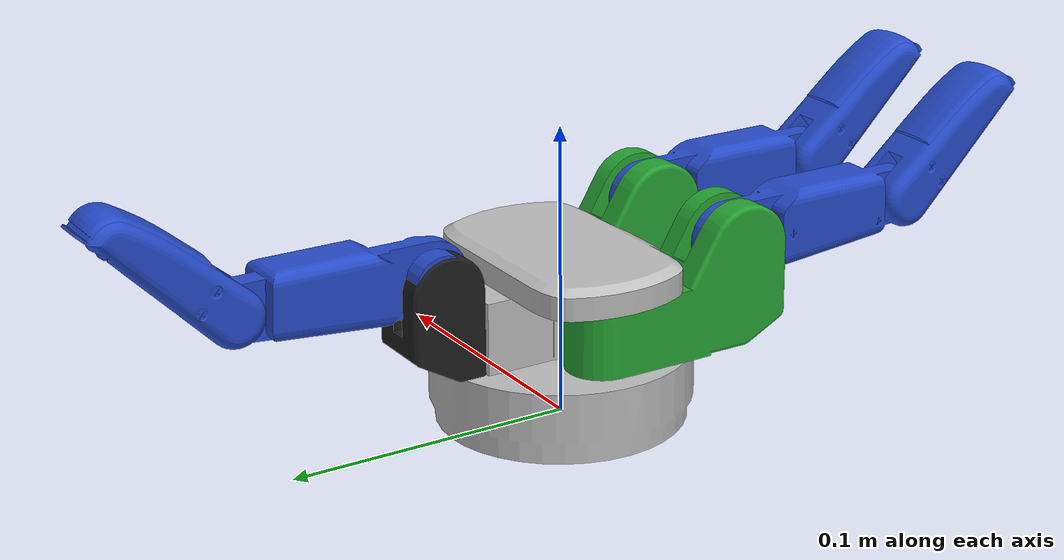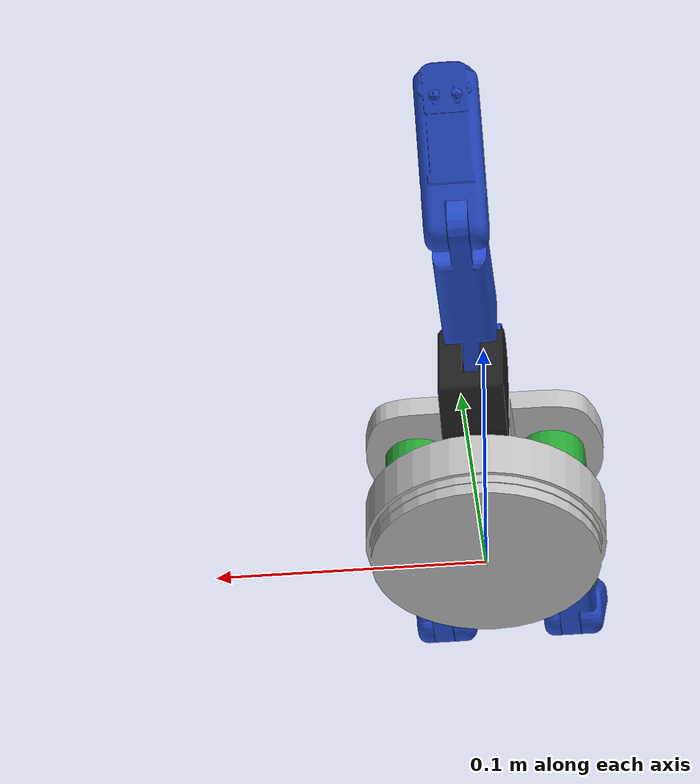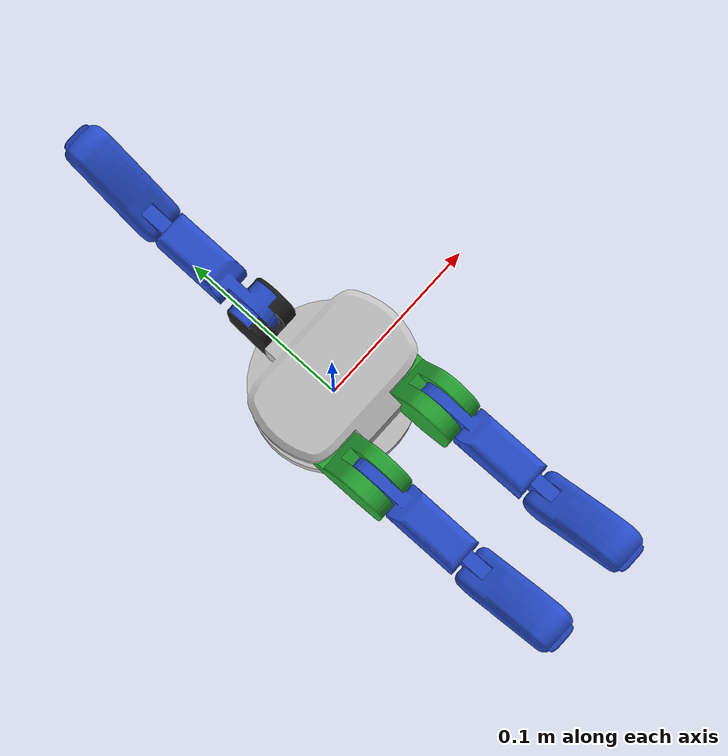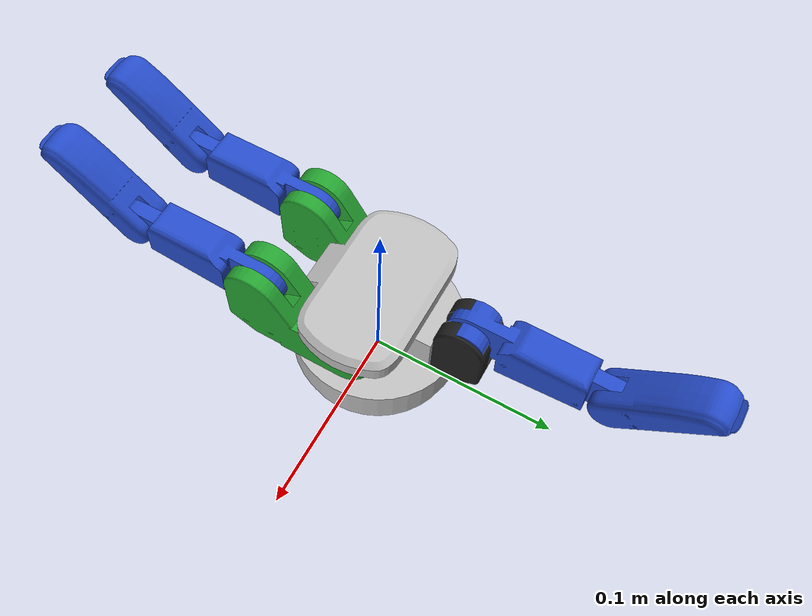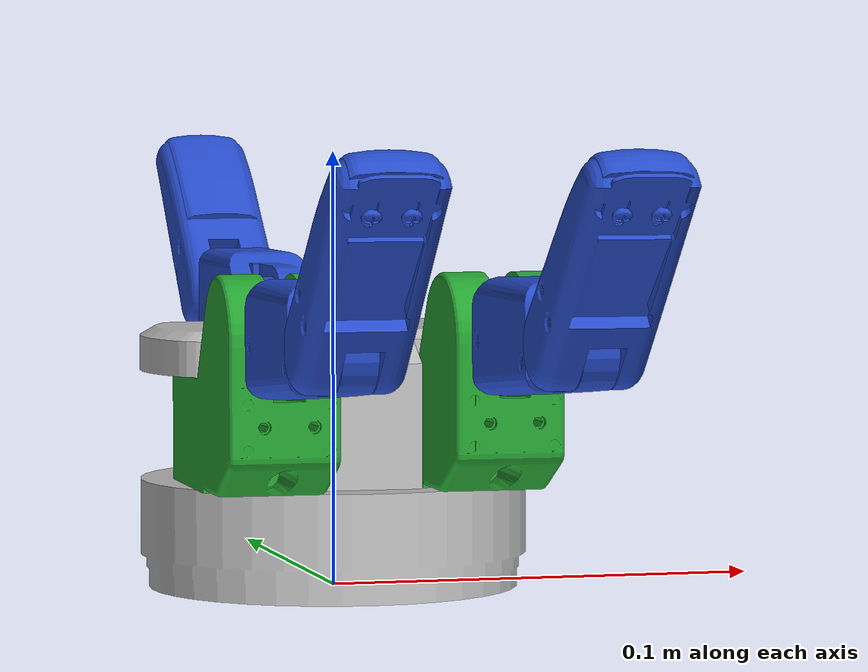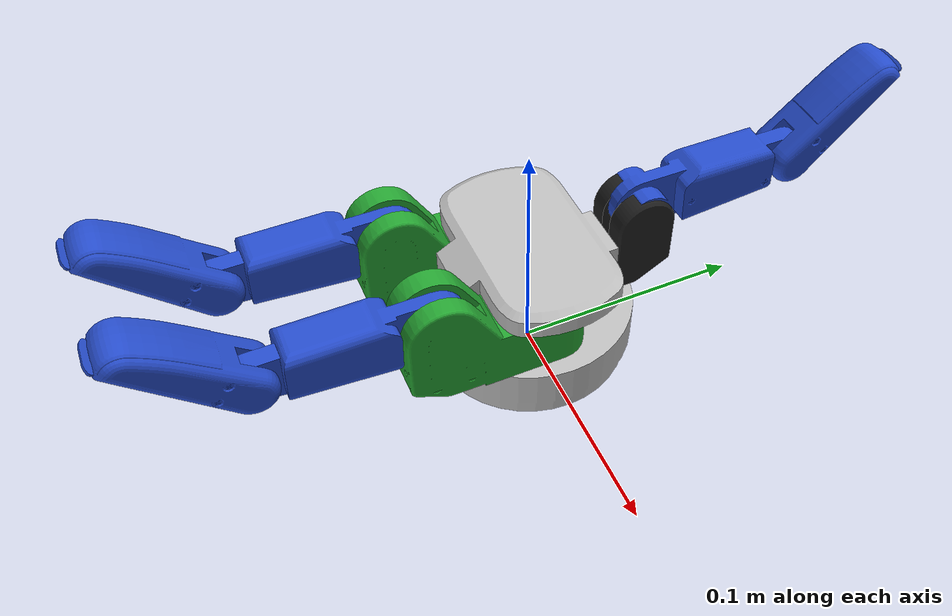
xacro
<?xml version="1.0"?>
<robot name="bhand" xmlns:xacro="http://www.ros.org/wiki/xacro">

	<!-- Available choices: bh282.urdf.xacro, bh280.urdf.xacro -->
	<xacro:include filename="$(find bhand_description)/urdf/bh282.urdf.xacro" />

	<!-- z-coordinate is not 0 because otherwise the hand base tilts when the simulation is started -->
	<link name="base_link">
		<visual>
		  <origin xyz="0 0 0.01" rpy="0 0 0" />
		  <geometry>
			 <box size="0.001 0.001 0.001" />
		  </geometry>
		</visual>

		<collision>
		  <origin xyz="0 0 0.01" rpy="0 0 0" />
		  <geometry>
			<box size="0.001 0.001 0.001" />
		  </geometry>
		</collision>
	</link>

	<joint name="hand_joint" type="fixed">
		 <origin xyz="0 0 0" rpy="0 0 0" />
		 <parent link="base_link"/>
		 <child link="hand_base_link"/>
	</joint>

	<link name="hand_base_link"/>

	<xacro:bhand_macro name="bh" parent="hand_base_link">
		<origin xyz="0 0 0" rpy="0 0 0" />
	</xacro:bhand_macro>

	<gazebo>
	    <plugin name="ros_control" filename="libgazebo_ros_control.so">
	       <robotNamespace>/</robotNamespace>
	       <controlPeriod>0.001</controlPeriod>
	       <robotSimType>gazebo_ros_control/DefaultRobotHWSim</robotSimType>
	    </plugin>
    </gazebo>

</robot>

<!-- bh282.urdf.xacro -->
<robot xmlns:xacro="http://www.ros.org/wiki/xacro">

	<!-- Import all Gazebo-customization elements, including Gazebo colors -->
	<xacro:include filename="$(find bhand_description)/urdf/bh282.gazebo.xacro" />

	<!-- Constants for robot dimensions -->
	<xacro:property name="PI" value="3.1415926535897931"/>
	<xacro:property name="PI_2" value="1.570796327"/>
	<xacro:property name="joint_damping" value="100.0" />
	<xacro:property name="joint_friction" value="1.0" />
	<xacro:property name="joint_effort_limit" value="30.0" />
	<xacro:property name="joint_velocity_limit" value="2.0" />
	<xacro:property name="mechanical_reduction" value="1.0" />

	<xacro:macro name="bhand_macro" params="parent name *origin">

		<joint name="${name}_base_joint" type="fixed">
			<insert_block name="origin"/>
			<parent link="${parent}"/>
			<child link="${name}_base_link"/>
		</joint>

		<!-- HAND BASE_LINK (RED) -->
		<link name="${name}_base_link">
			<inertial>
			  <mass value="3.0" />
			  <origin xyz="0 0 0" />
			  <inertia  ixx="1.0" ixy="0.0"  ixz="0.0"  iyy="1.0"  iyz="0.0"  izz="1.0" />
			</inertial>
			<visual>
			   <origin xyz="0 0 0" rpy="0 0 0" />
			   <geometry>
				  <mesh filename="package://bhand_description/meshes/palm_282.dae"/>
			   </geometry>
			   <material name="Grey">
				  <color rgba="0.75 0.75 0.75 1.0"/>
			   </material>
			</visual>
			<collision>
			   <origin xyz="0 0 0" rpy="0 0 0 " />
			   <geometry>
				  <mesh filename="package://bhand_description/meshes/palm_282.dae"/>
			   </geometry>
			   <contact_coefficients kd="1.0" kp="1000.0" mu="0"/>
			</collision>
		</link>

		<!-- finger 3 -->
		<!-- finger 31 link -->
		<link name="${name}_finger_31_link">
		 <inertial>
		   <mass value="0.1"/>
		   <origin xyz="-0.046 0 0" rpy="0 0 0"/>
		   <inertia ixx="0.01" ixy="0" ixz="0" iyy="0.01" iyz="0" izz="0.01" />
		 </inertial>
		 <visual>
		   <origin xyz="-0.04 0 0" rpy="0 0 0" />
		   <geometry>
			  <mesh filename="package://bhand_description/meshes/knuckle_fixed.dae" />
		   </geometry>
		   <material name="Black"/>
		 </visual>
		 <collision>
		   <origin xyz="-0.04 0 0" rpy="0 0 0" />
		   <geometry>
			  <mesh filename="package://bhand_description/meshes/knuckle_fixed.dae"/>
		   </geometry>
		   <contact_coefficients kd="1.0" kp="1000.0" mu="0"/>
		  </collision>
		</link>

		<!-- joint between BH_palm_link and BH_finger_31_link -->
		<!-- finger3 is the center finger and is fixed -->
		<joint name="${name}_j31_joint" type="fixed">
			<parent link="${name}_base_link"/>
			<child link="${name}_finger_31_link"/>
			<origin xyz="0 0 0.0252" rpy="0 0 -${PI_2}"/>
		</joint>

		<!-- finger 32 link -->
		<link name="${name}_finger_32_link">
			 <inertial>
				<mass value="0.1"/>
				<origin xyz="0 0 0" rpy="0 0 0"/>
				<inertia ixx="0.01" ixy="0" ixz="0" iyy="0.01" iyz="0" izz="0.01" />
			 </inertial>
			 <visual>
				<origin xyz="0 0 0" rpy="0 0 0" />
				<geometry>
				  <mesh filename="package://bhand_description/meshes/finger.dae" />
				</geometry>
				<material name="Blue" />
			 </visual>
			 <collision>
				<origin xyz="0 0 0" rpy="0 0 0" />
				<geometry>
				  <mesh filename="package://bhand_description/meshes/finger.dae" />
				</geometry>
				<contact_coefficients kd="1.0" kp="1000.0" mu="0"/>
			 </collision>
		</link>

		<!-- joint between BH_finger_31_link and BH_finger_32_link -->
		<joint name="${name}_j32_joint" type="revolute">
			<parent link="${name}_finger_31_link"/>
			<child link="${name}_finger_32_link"/>
			<origin	xyz="-0.05 0 0.0339"
				rpy="1.5708 -8.8281E-17 0" />
			<axis xyz="0 0 -1"/>
			<limit effort="${joint_effort_limit}" lower="0.0" upper="2.44" velocity="${joint_velocity_limit}"/>
			<dynamics damping="${joint_damping}" friction="${joint_friction}"/>
		</joint>

		<transmission name="${name}_j32_transmission">
			<type>transmission_interface/SimpleTransmission</type>
			<joint name="${name}_j32_joint">
			   <hardwareInterface>PositionJointInterface</hardwareInterface>
			</joint>
			<actuator name="${name}_j32">
			  <hardwareInterface>PositionJointInterface</hardwareInterface>
			  <mechanicalReduction>1</mechanicalReduction>
			  <motorTorqueConstant>1</motorTorqueConstant>
			</actuator>
		</transmission>

		<!-- finger 33 link -->
		<link name="${name}_finger_33_link">
		 <inertial>
			<mass value="0.1"/>
			<origin xyz="0 0 0" rpy="0 0 0"/>
			<inertia ixx="0.01" ixy="0" ixz="0" iyy="0.01" iyz="0" izz="0.01" />
		 </inertial>
		 <visual>
			<origin xyz="0 0 0" rpy="0 0 0" />
			<geometry>
			  <mesh filename="package://bhand_description/meshes/finger_tip.dae" />
			</geometry>
			<material name="Blue" />
		 </visual>
		 <collision>
			<origin xyz="0 0 0" rpy="0 0 0" />
			<geometry>
			  <mesh filename="package://bhand_description/meshes/finger_tip.dae" />
			</geometry>
			<contact_coefficients kd="1.0" kp="1000.0" mu="0"/>
		 </collision>
		</link>

		<!-- joint between BH_finger_32_link and BH_finger_33_link -->
		<joint name="${name}_j33_joint" type="revolute">
			<parent link="${name}_finger_32_link"/>
			<child link="${name}_finger_33_link"/>
			<origin xyz="-0.069936 0.003 0" rpy="0 0 0" />
			<axis xyz="0 0 -1"/>
			<mimic joint="${name}_j32_joint" multiplier="${0.84/2.44}"/>
			<limit effort="${joint_effort_limit}" lower="0.0" upper="0.84" velocity="${joint_velocity_limit}"/>
			<dynamics damping="${joint_damping}" friction="${joint_friction}"/>
		</joint>

		<transmission name="${name}_j33_transmission">
			<type>transmission_interface/SimpleTransmission</type>
			<joint name="${name}_j33_joint">
				<hardwareInterface>PositionJointInterface</hardwareInterface>
			</joint>
			<actuator name="${name}_j33">
			  <hardwareInterface>PositionJointInterface</hardwareInterface>
			  <mechanicalReduction>1</mechanicalReduction>
			  <motorTorqueConstant>1</motorTorqueConstant>
			</actuator>
		</transmission>

		<!-- finger 1 -->
		<!-- finger 11 link -->
		<link name="${name}_finger_11_link">
			<inertial>
			  <mass value="0.1"/>
			  <origin xyz="-0.046 0 0" rpy="0 0 0"/>
			  <inertia ixx="0.01" ixy="0" ixz="0" iyy="0.01" iyz="0" izz="0.01" />
			</inertial>
			<visual>
			  <origin xyz="0 0 0" rpy="0 0 0" />
			  <geometry>
				 <mesh filename="package://bhand_description/meshes/knuckle.dae" />
			  </geometry>
			  <material name="Green" />
			</visual>
			<collision>
			  <origin xyz="0 0 0" rpy="0 0 0" />
			  <geometry>
				<mesh filename="package://bhand_description/meshes/knuckle.dae" />
			  </geometry>
			</collision>
		</link>

		<!-- joint between BH_palm_link and BH_finger_11_link -->
		<joint name="${name}_j11_joint" type="revolute">
			<parent link="${name}_base_link"/>
			<child link="${name}_finger_11_link"/>
			<origin xyz="-0.025 0 0.0252" rpy="0 0 1.5708" />
			<axis xyz="0 0 -1"/>
			<limit effort="${joint_effort_limit}" lower="0" upper="3.1416" velocity="${joint_velocity_limit}"/>
			<dynamics damping="${joint_damping}" friction="${joint_friction}"/>
		</joint>

		<transmission name="${name}_j11_transmission">
			<type>transmission_interface/SimpleTransmission</type>
			<joint name="${name}_j11_joint">
				<hardwareInterface>PositionJointInterface</hardwareInterface>
			</joint>
			<actuator name="${name}_j11">
			  <hardwareInterface>PositionJointInterface</hardwareInterface>
			  <mechanicalReduction>1</mechanicalReduction>
			  <motorTorqueConstant>1</motorTorqueConstant>
			</actuator>
		</transmission>

		<!-- finger 12 link -->
		<link name="${name}_finger_12_link">
			 <inertial>
				<mass value="0.1"/>
				<origin xyz="0 0 0" rpy="0 0 0"/>
				<inertia ixx="0.01" ixy="0" ixz="0" iyy="0.01" iyz="0" izz="0.01" />
			 </inertial>
			 <visual>
				<origin xyz="0 0 0" rpy="0 0 0" />
				<geometry>
				  <mesh filename="package://bhand_description/meshes/finger.dae" />
				</geometry>
				<material name="Blue" />
			 </visual>
			 <collision>
				<origin xyz="0 0 0" rpy="0 0 0" />
				<geometry>
				  <mesh filename="package://bhand_description/meshes/finger.dae" />
				</geometry>
				<contact_coefficients kd="1.0" kp="1000.0" mu="0"/>
			 </collision>
		</link>

		<!-- joint between BH_finger_11_link and BH_finger_12_link -->
		<joint name="${name}_j12_joint" type="revolute">
			<parent link="${name}_finger_11_link"/>
			<child link="${name}_finger_12_link"/>
			<origin	xyz="-0.05 0 0.0339"
				rpy="1.5708 0 0" />
			<axis xyz="0 0 -1"/>
			<limit effort="${joint_effort_limit}" lower="0.0" upper="2.44" velocity="${joint_velocity_limit}"/>
			<dynamics damping="${joint_damping}" friction="${joint_friction}"/>
		</joint>

		<transmission name="${name}_j12_transmission">
			<type>transmission_interface/SimpleTransmission</type>
			<joint name="${name}_j12_joint">
				<hardwareInterface>PositionJointInterface</hardwareInterface>
			</joint>
			<actuator name="${name}_j12">
			  <hardwareInterface>PositionJointInterface</hardwareInterface>
			  <mechanicalReduction>1</mechanicalReduction>
			  <motorTorqueConstant>1</motorTorqueConstant>
			</actuator>
		</transmission>

		<!-- finger 13 link -->
		<link name="${name}_finger_13_link">
		 <inertial>
			<mass value="0.1"/>
			<origin xyz="0 0 0" rpy="0 0 0"/>
			<inertia ixx="0.01" ixy="0" ixz="0" iyy="0.01" iyz="0" izz="0.01" />
		 </inertial>
		 <visual>
			<origin xyz="0 0 0" rpy="0 0 0" />
			<geometry>
			  <mesh filename="package://bhand_description/meshes/finger_tip.dae" />
			</geometry>
			<material name="Blue" />
		 </visual>
		 <collision>
			<origin xyz="0 0 0" rpy="0 0 0" />
			<geometry>
			  <mesh filename="package://bhand_description/meshes/finger_tip.dae" />
			</geometry>
			<contact_coefficients kd="1.0" kp="1000.0" mu="0"/>
		 </collision>
		</link>

		<!-- joint between BH_finger_12_link and BH_finger_13_link -->
		<joint name="${name}_j13_joint" type="revolute">
			<parent link="${name}_finger_12_link"/>
			<child link="${name}_finger_13_link"/>
			<origin xyz="-0.069936 0.003 0" rpy="0 0 0" />
			<axis xyz="0 0 -1"/>
			<mimic joint="${name}_j12_joint" multiplier="${0.84/2.44}"/>
			<limit effort="${joint_effort_limit}" lower="0.0" upper="0.84" velocity="${joint_velocity_limit}"/>
			<dynamics damping="${joint_damping}" friction="${joint_friction}"/>
		</joint>

		<transmission name="${name}_j13_transmission">
			<type>transmission_interface/SimpleTransmission</type>
			<joint name="${name}_j13_joint">
				<hardwareInterface>PositionJointInterface</hardwareInterface>
			</joint>
			<actuator name="${name}_j13">
			  <hardwareInterface>PositionJointInterface</hardwareInterface>
			  <mechanicalReduction>1</mechanicalReduction>
			  <motorTorqueConstant>1</motorTorqueConstant>
			</actuator>
		</transmission>

		<!-- finger 2 -->
		<!-- finger 21 link -->
		<link name="${name}_finger_21_link">
			<inertial>
			  <mass value="0.1"/>
			  <origin xyz="-0.046 0 0" rpy="0 0 0"/>
			  <inertia ixx="0.01" ixy="0" ixz="0" iyy="0.01" iyz="0" izz="0.01" />
			</inertial>
			<visual>
			  <origin xyz="0 0 0" rpy="0 0 0" />
			  <geometry>
				 <mesh filename="package://bhand_description/meshes/knuckle.dae" />
			  </geometry>
			  <material name="Green" />
			</visual>
			<collision>
			  <origin xyz="0 0 0" rpy="0 0 0" />
			  <geometry>
				<mesh filename="package://bhand_description/meshes/knuckle.dae" />
			  </geometry>
			</collision>
		</link>

		<!-- joint between BH_palm_link and BH_finger_21_link -->
		<joint name="${name}_j21_joint" type="revolute">
			<parent link="${name}_base_link"/>
			<child link="${name}_finger_21_link"/>
			<origin xyz="0.025 0 0.0252" rpy="0 0 1.5708" />
			<axis xyz="0 0 1"/>
			<mimic joint="${name}_j11_joint" multiplier="1"/>
			<limit effort="${joint_effort_limit}" lower="0" upper="3.1416" velocity="${joint_velocity_limit}"/>
			<dynamics damping="${joint_damping}" friction="${joint_friction}"/>
		</joint>

		<transmission name="${name}_j21_transmission">
			<type>transmission_interface/SimpleTransmission</type>
			<joint name="${name}_j21_joint">
				<hardwareInterface>PositionJointInterface</hardwareInterface>
			</joint>
			<actuator name="${name}_j21">
			  <hardwareInterface>PositionJointInterface</hardwareInterface>
			  <mechanicalReduction>1</mechanicalReduction>
			  <motorTorqueConstant>1</motorTorqueConstant>
			</actuator>
		</transmission>

		<!-- finger 12 link -->
		<link name="${name}_finger_22_link">
			 <inertial>
				<mass value="0.1"/>
				<origin xyz="0 0 0" rpy="0 0 0"/>
				<inertia ixx="0.01" ixy="0" ixz="0" iyy="0.01" iyz="0" izz="0.01" />
			 </inertial>
			 <visual>
				<origin xyz="0 0 0" rpy="0 0 0" />
				<geometry>
				  <mesh filename="package://bhand_description/meshes/finger.dae" />
				</geometry>
				<material name="Blue" />
			 </visual>
			 <collision>
				<origin xyz="0 0 0" rpy="0 0 0" />
				<geometry>
				  <mesh filename="package://bhand_description/meshes/finger.dae" />
				</geometry>
				<contact_coefficients kd="1.0" kp="1000.0" mu="0"/>
			 </collision>
		</link>

		<!-- joint between BH_finger_21_link and BH_finger_22_link -->
		<joint name="${name}_j22_joint" type="revolute">
			<parent link="${name}_finger_21_link"/>
			<child link="${name}_finger_22_link"/>
			<origin	xyz="-0.05 0 0.0339"
				rpy="1.5708 -8.8281E-17 0" />
			<axis xyz="0 0 -1"/>
			<limit effort="${joint_effort_limit}" lower="0.0" upper="2.44" velocity="${joint_velocity_limit}"/>
			<dynamics damping="${joint_damping}" friction="${joint_friction}"/>
		</joint>

		<transmission name="${name}_j22_transmission">
			<type>transmission_interface/SimpleTransmission</type>
			<joint name="${name}_j22_joint">
				<hardwareInterface>PositionJointInterface</hardwareInterface>
			</joint>
			<actuator name="${name}_j22">
			  <hardwareInterface>PositionJointInterface</hardwareInterface>
			  <mechanicalReduction>1</mechanicalReduction>
			  <motorTorqueConstant>1</motorTorqueConstant>
			</actuator>
		</transmission>

		<!-- finger 23 link -->
		<link name="${name}_finger_23_link">
		 <inertial>
			<mass value="0.1"/>
			<origin xyz="0 0 0" rpy="0 0 0"/>
			<inertia ixx="0.01" ixy="0" ixz="0" iyy="0.01" iyz="0" izz="0.01" />
		 </inertial>
		 <visual>
			<origin xyz="0 0 0" rpy="0 0 0" />
			<geometry>
			  <mesh filename="package://bhand_description/meshes/finger_tip.dae" />
			</geometry>
			<material name="Blue" />
		 </visual>
		 <collision>
			<origin xyz="0 0 0" rpy="0 0 0" />
			<geometry>
			  <mesh filename="package://bhand_description/meshes/finger_tip.dae" />
			</geometry>
			<contact_coefficients kd="1.0" kp="1000.0" mu="0"/>
		 </collision>
		</link>

		<!-- joint between BH_finger_22_link and BH_finger_23_link -->
		<joint name="${name}_j23_joint" type="revolute">
			<parent link="${name}_finger_22_link"/>
			<child link="${name}_finger_23_link"/>
			<origin xyz="-0.069936 0.003 0" rpy="0 0 0" />
			<axis xyz="0 0 -1"/>
			<mimic joint="${name}_j22_joint" multiplier="${0.84/2.44}"/>
			<limit effort="${joint_effort_limit}" lower="0.0" upper="0.84" velocity="${joint_velocity_limit}"/>
			<dynamics damping="${joint_damping}" friction="${joint_friction}"/>
		</joint>

		<transmission name="${name}_j23_transmission">
			<type>transmission_interface/SimpleTransmission</type>
			<joint name="${name}_j23_joint">
				<hardwareInterface>PositionJointInterface</hardwareInterface>
			</joint>
			<actuator name="${name}_j23">
			  <hardwareInterface>PositionJointInterface</hardwareInterface>
			  <mechanicalReduction>1</mechanicalReduction>
			  <motorTorqueConstant>1</motorTorqueConstant>
			</actuator>
		</transmission>

		<!-- finger 23 link -->
    <link name="${name}_finger_1_tip_link" />

		<!-- joint between BH_finger_21_link and BH_finger_22_link -->
		<joint name="${name}_j13_tip_joint" type="fixed">
			<parent link="${name}_finger_13_link"/>
			<child link="${name}_finger_1_tip_link"/>
			<origin	xyz="-0.03 0.037 0" rpy="0.76 1.57 1.57" />
		</joint>

		<!-- finger 23 link -->
    <link name="${name}_finger_2_tip_link" />

		<!-- joint between BH_finger_21_link and BH_finger_22_link -->
		<joint name="${name}_j23_tip_joint" type="fixed">
			<parent link="${name}_finger_23_link"/>
			<child link="${name}_finger_2_tip_link"/>
			<origin	xyz="-0.03 0.037 0" rpy="0.76 1.57 1.57" />
		</joint>

		<!-- finger 23 link -->
    <link name="${name}_finger_3_tip_link" />

		<!-- joint between BH_finger_21_link and BH_finger_22_link -->
		<joint name="${name}_j33_tip_joint" type="fixed">
			<parent link="${name}_finger_33_link"/>
			<child link="${name}_finger_3_tip_link"/>
			<origin	xyz="-0.03 0.037 0" rpy="0.76 1.57 1.57" />
		</joint>

		<!-- finger 23 link -->
    <link name="${name}_palm_link" />

		<!-- joint between BH_finger_21_link and BH_finger_22_link -->
		<joint name="${name}_base_palm_joint" type="fixed">
			<parent link="${name}_base_link"/>
			<child link="${name}_palm_link"/>
			<origin	xyz="0 0 0.06" rpy="0 0 0" />
		</joint>

		<xacro:bh_gazebo name="${name}"/>

	</xacro:macro>

</robot>
